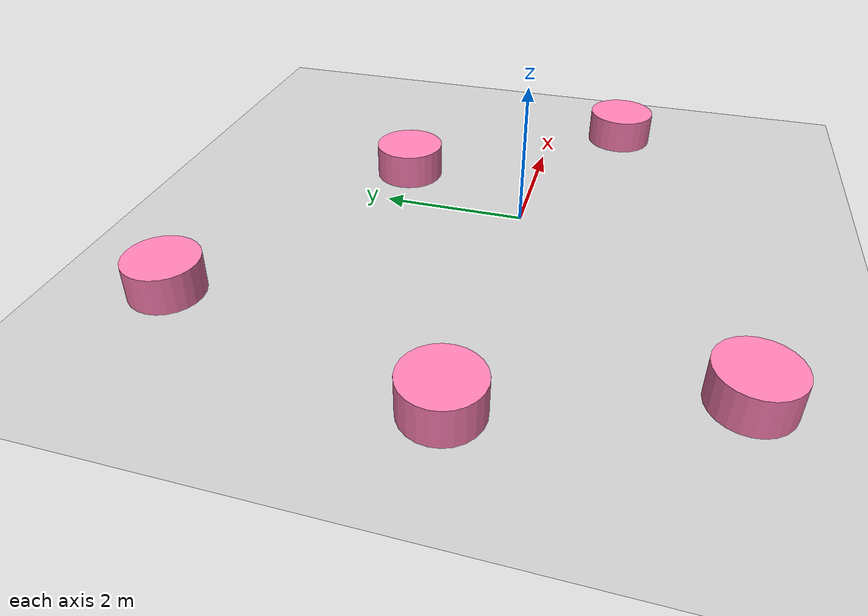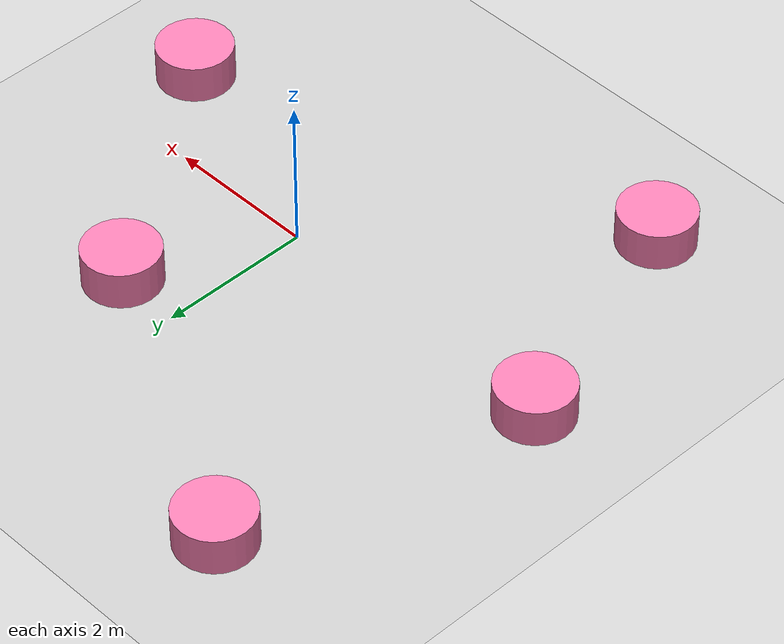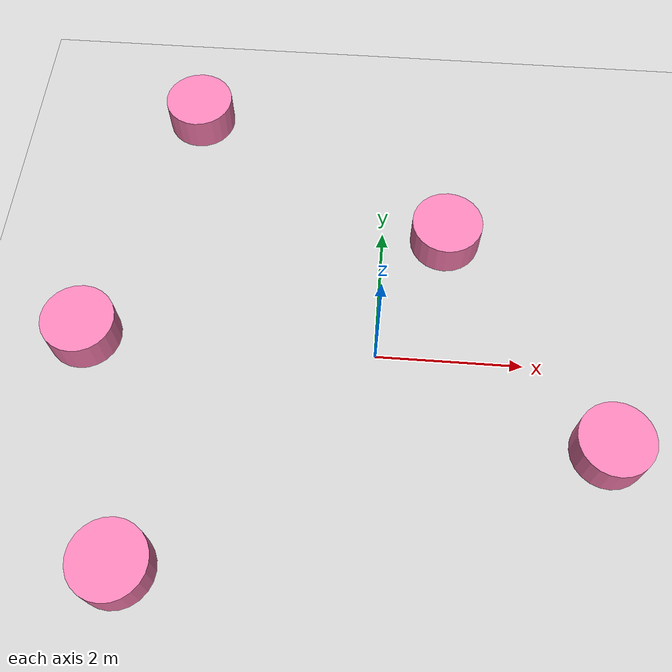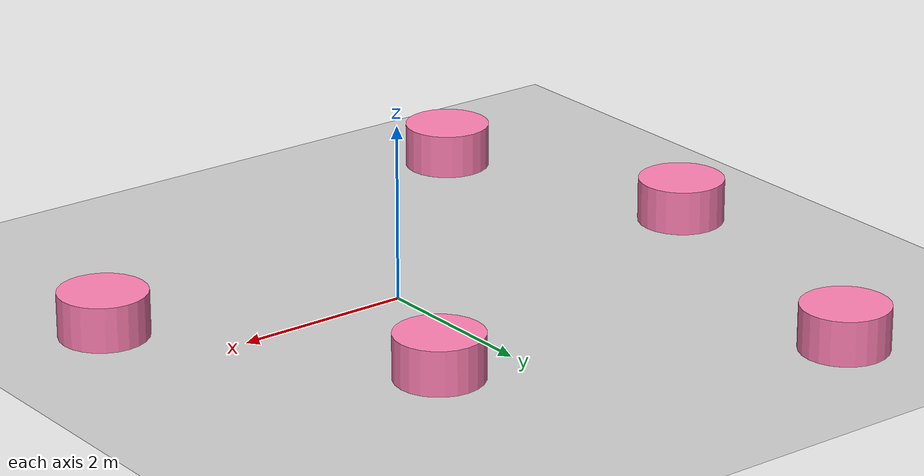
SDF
<sdf version="1.6">
 <world name="empty_world">
  <light name="sun" type="directional">
   <pose>0 0 10 0 -0 0</pose>
   <diffuse>0.8 0.8 0.8 1</diffuse>
   <specular>0.2 0.2 0.2 1</specular>
   <attenuation>
    <range>1000</range>
    <constant>0.9</constant>
    <linear>0.01</linear>
    <quadratic>0.001</quadratic>
   </attenuation>
   <direction>-0.5 0.1 -0.9</direction>
  </light>
  <model name="ground_plane">
   <static>1</static>
   <link name="link">
    <collision name="collision">
     <geometry><plane><normal>0 0 1</normal><size>100 100</size></plane></geometry>
     <surface><friction><ode><mu>100</mu><mu2>50</mu2></ode></friction></surface>
    </collision>
    <visual name="visual">
     <cast_shadows>0</cast_shadows>
     <geometry><plane><normal>0 0 1</normal><size>100 100</size></plane></geometry>
     <material>
      <script><uri>file://media/materials/scripts/gazebo.material</uri><name>Gazebo/Grey</name></script>
     </material>
    </visual>
   </link>
  </model>
  <gravity>0 0 -9.8</gravity>
  <magnetic_field>6e-06 2.3e-05 -4.2e-05</magnetic_field>
  <atmosphere type="adiabatic"/>
  <physics name="default_physics" default="0" type="ode">
   <max_step_size>0.001</max_step_size>
   <real_time_factor>1</real_time_factor>
   <real_time_update_rate>1000</real_time_update_rate>
  </physics>
  <scene>
   <ambient>0.4 0.4 0.4 1</ambient>
   <background>0.7 0.7 0.7 1</background>
   <shadows>1</shadows>
   <sky><sunrise>5</sunrise></sky>
  </scene>
  <spherical_coordinates>
   <surface_model>EARTH_WGS84</surface_model>
   <latitude_deg>0</latitude_deg>
   <longitude_deg>0</longitude_deg>
   <elevation>0</elevation>
   <heading_deg>0</heading_deg>
  </spherical_coordinates>
  <audio><device>default</device></audio>
  <model name="unit_cylinder_0">
   <link name="link">
    <inertial>
     <mass>3926.99</mass>
     <inertia><ixx>572.686</ixx><ixy>0</ixy><ixz>0</ixz><iyy>572.686</iyy><iyz>0</iyz><izz>490.874</izz></inertia>
    </inertial>
    <visual name="visual">
     <geometry><cylinder><radius>0.5</radius><length>1</length></cylinder></geometry>
     <material>
      <script><name>Gazebo/Grey</name><uri>file://media/materials/scripts/gazebo.material</uri></script>
      <shader type="vertex"><normal_map>__default__</normal_map></shader>
      <ambient>1 0.5 0.7 1</ambient>
      <diffuse>0 0 0 1</diffuse>
      <specular>0 0 0 1</specular>
      <emissive>0 0 0 1</emissive>
     </material>
    </visual>
    <collision name="collision">
     <geometry><cylinder><radius>0.5</radius><length>1</length></cylinder></geometry>
     <surface>
      <friction>
       <ode><mu>1</mu><mu2>1</mu2><fdir1>0 0 0</fdir1><slip1>0</slip1><slip2>0</slip2></ode>
       <torsional>
        <coefficient>1</coefficient>
        <patch_radius>0</patch_radius>
        <surface_radius>0</surface_radius>
        <use_patch_radius>1</use_patch_radius>
        <ode><slip>0</slip></ode>
       </torsional>
      </friction>
      <bounce><restitution_coefficient>0</restitution_coefficient><threshold>1e+06</threshold></bounce>
      <contact>
       <collide_without_contact>0</collide_without_contact>
       <collide_without_contact_bitmask>1</collide_without_contact_bitmask>
       <collide_bitmask>1</collide_bitmask>
       <ode>
        <soft_cfm>0</soft_cfm>
        <soft_erp>0.2</soft_erp>
        <kp>1e+13</kp>
        <kd>1</kd>
        <max_vel>0.01</max_vel>
        <min_depth>0</min_depth>
       </ode>
       <bullet>
        <split_impulse>1</split_impulse>
        <split_impulse_penetration_threshold>-0.01</split_impulse_penetration_threshold>
        <soft_cfm>0</soft_cfm>
        <soft_erp>0.2</soft_erp>
        <kp>1e+13</kp>
        <kd>1</kd>
       </bullet>
      </contact>
     </surface>
    </collision>
   </link>
   <static>0</static>
   <pose>3.06585 -1.13127 0 0 -0 0</pose>
  </model>
  <model name="unit_cylinder_1">
   <link name="link">
    <inertial>
     <mass>3926.99</mass>
     <inertia><ixx>572.686</ixx><ixy>0</ixy><ixz>0</ixz><iyy>572.686</iyy><iyz>0</iyz><izz>490.874</izz></inertia>
    </inertial>
    <visual name="visual">
     <geometry><cylinder><radius>0.5</radius><length>1</length></cylinder></geometry>
     <material>
      <script><name>Gazebo/Grey</name><uri>file://media/materials/scripts/gazebo.material</uri></script>
      <shader type="vertex"><normal_map>__default__</normal_map></shader>
      <ambient>1 0.5 0.7 1</ambient>
      <diffuse>0 0 0 1</diffuse>
      <specular>0 0 0 1</specular>
      <emissive>0 0 0 1</emissive>
     </material>
    </visual>
    <collision name="collision">
     <geometry><cylinder><radius>0.5</radius><length>1</length></cylinder></geometry>
     <surface>
      <friction>
       <ode><mu>1</mu><mu2>1</mu2><fdir1>0 0 0</fdir1><slip1>0</slip1><slip2>0</slip2></ode>
       <torsional>
        <coefficient>1</coefficient>
        <patch_radius>0</patch_radius>
        <surface_radius>0</surface_radius>
        <use_patch_radius>1</use_patch_radius>
        <ode><slip>0</slip></ode>
       </torsional>
      </friction>
      <bounce><restitution_coefficient>0</restitution_coefficient><threshold>1e+06</threshold></bounce>
      <contact>
       <collide_without_contact>0</collide_without_contact>
       <collide_without_contact_bitmask>1</collide_without_contact_bitmask>
       <collide_bitmask>1</collide_bitmask>
       <ode>
        <soft_cfm>0</soft_cfm>
        <soft_erp>0.2</soft_erp>
        <kp>1e+13</kp>
        <kd>1</kd>
        <max_vel>0.01</max_vel>
        <min_depth>0</min_depth>
       </ode>
       <bullet>
        <split_impulse>1</split_impulse>
        <split_impulse_penetration_threshold>-0.01</split_impulse_penetration_threshold>
        <soft_cfm>0</soft_cfm>
        <soft_erp>0.2</soft_erp>
        <kp>1e+13</kp>
        <kd>1</kd>
       </bullet>
      </contact>
     </surface>
    </collision>
   </link>
   <static>0</static>
   <pose>-2.94519 3.95489 0 0 -0 0</pose>
  </model>
  <model name="unit_cylinder">
   <link name="link">
    <inertial>
     <mass>3926.99</mass>
     <inertia><ixx>572.686</ixx><ixy>0</ixy><ixz>0</ixz><iyy>572.686</iyy><iyz>0</iyz><izz>490.874</izz></inertia>
    </inertial>
    <visual name="visual">
     <geometry><cylinder><radius>0.5</radius><length>1</length></cylinder></geometry>
     <material>
      <script><name>Gazebo/Grey</name><uri>file://media/materials/scripts/gazebo.material</uri></script>
      <shader type="vertex"><normal_map>__default__</normal_map></shader>
      <ambient>1 0.5 0.7 1</ambient>
      <diffuse>0 0 0 1</diffuse>
      <specular>0 0 0 1</specular>
      <emissive>0 0 0 1</emissive>
     </material>
    </visual>
    <collision name="collision">
     <geometry><cylinder><radius>0.5</radius><length>1</length></cylinder></geometry>
     <surface>
      <friction>
       <ode><mu>1</mu><mu2>1</mu2><fdir1>0 0 0</fdir1><slip1>0</slip1><slip2>0</slip2></ode>
       <torsional>
        <coefficient>1</coefficient>
        <patch_radius>0</patch_radius>
        <surface_radius>0</surface_radius>
        <use_patch_radius>1</use_patch_radius>
        <ode><slip>0</slip></ode>
       </torsional>
      </friction>
      <bounce><restitution_coefficient>0</restitution_coefficient><threshold>1e+06</threshold></bounce>
      <contact>
       <collide_without_contact>0</collide_without_contact>
       <collide_without_contact_bitmask>1</collide_without_contact_bitmask>
       <collide_bitmask>1</collide_bitmask>
       <ode>
        <soft_cfm>0</soft_cfm>
        <soft_erp>0.2</soft_erp>
        <kp>1e+13</kp>
        <kd>1</kd>
        <max_vel>0.01</max_vel>
        <min_depth>0</min_depth>
       </ode>
       <bullet>
        <split_impulse>1</split_impulse>
        <split_impulse_penetration_threshold>-0.01</split_impulse_penetration_threshold>
        <soft_cfm>0</soft_cfm>
        <soft_erp>0.2</soft_erp>
        <kp>1e+13</kp>
        <kd>1</kd>
       </bullet>
      </contact>
     </surface>
    </collision>
   </link>
   <static>0</static>
   <pose>-2.99239 -3.04921 0 0 -0 0</pose>
  </model>
  <model name="unit_cylinder_2">
   <link name="link">
    <inertial>
     <mass>3926.99</mass>
     <inertia><ixx>572.686</ixx><ixy>0</ixy><ixz>0</ixz><iyy>572.686</iyy><iyz>0</iyz><izz>490.874</izz></inertia>
    </inertial>
    <visual name="visual">
     <geometry><cylinder><radius>0.5</radius><length>1</length></cylinder></geometry>
     <material>
      <script><name>Gazebo/Grey</name><uri>file://media/materials/scripts/gazebo.material</uri></script>
      <shader type="vertex"><normal_map>__default__</normal_map></shader>
      <ambient>1 0.5 0.7 1</ambient>
      <diffuse>0 0 0 1</diffuse>
      <specular>0 0 0 1</specular>
      <emissive>0 0 0 1</emissive>
     </material>
    </visual>
    <collision name="collision">
     <geometry><cylinder><radius>0.5</radius><length>1</length></cylinder></geometry>
     <surface>
      <friction>
       <ode><mu>1</mu><mu2>1</mu2><fdir1>0 0 0</fdir1><slip1>0</slip1><slip2>0</slip2></ode>
       <torsional>
        <coefficient>1</coefficient>
        <patch_radius>0</patch_radius>
        <surface_radius>0</surface_radius>
        <use_patch_radius>1</use_patch_radius>
        <ode><slip>0</slip></ode>
       </torsional>
      </friction>
      <bounce><restitution_coefficient>0</restitution_coefficient><threshold>1e+06</threshold></bounce>
      <contact>
       <collide_without_contact>0</collide_without_contact>
       <collide_without_contact_bitmask>1</collide_without_contact_bitmask>
       <collide_bitmask>1</collide_bitmask>
       <ode>
        <soft_cfm>0</soft_cfm>
        <soft_erp>0.2</soft_erp>
        <kp>1e+13</kp>
        <kd>1</kd>
        <max_vel>0.01</max_vel>
        <min_depth>0</min_depth>
       </ode>
       <bullet>
        <split_impulse>1</split_impulse>
        <split_impulse_penetration_threshold>-0.01</split_impulse_penetration_threshold>
        <soft_cfm>0</soft_cfm>
        <soft_erp>0.2</soft_erp>
        <kp>1e+13</kp>
        <kd>1</kd>
       </bullet>
      </contact>
     </surface>
    </collision>
   </link>
   <static>0</static>
   <pose>0.90908 1.95073 0 0 -0 0</pose>
  </model>
  <model name="unit_cylinder_3">
   <link name="link">
    <inertial>
     <mass>3926.99</mass>
     <inertia><ixx>572.686</ixx><ixy>0</ixy><ixz>0</ixz><iyy>572.686</iyy><iyz>0</iyz><izz>490.874</izz></inertia>
    </inertial>
    <visual name="visual">
     <geometry><cylinder><radius>0.5</radius><length>1</length></cylinder></geometry>
     <material>
      <script><name>Gazebo/Grey</name><uri>file://media/materials/scripts/gazebo.material</uri></script>
      <shader type="vertex"><normal_map>__default__</normal_map></shader>
      <ambient>1 0.5 0.7 1</ambient>
      <diffuse>0 0 0 1</diffuse>
      <specular>0 0 0 1</specular>
      <emissive>0 0 0 1</emissive>
     </material>
    </visual>
    <collision name="collision">
     <geometry><cylinder><radius>0.5</radius><length>1</length></cylinder></geometry>
     <surface>
      <friction>
       <ode><mu>1</mu><mu2>1</mu2><fdir1>0 0 0</fdir1><slip1>0</slip1><slip2>0</slip2></ode>
       <torsional>
        <coefficient>1</coefficient>
        <patch_radius>0</patch_radius>
        <surface_radius>0</surface_radius>
        <use_patch_radius>1</use_patch_radius>
        <ode><slip>0</slip></ode>
       </torsional>
      </friction>
      <bounce><restitution_coefficient>0</restitution_coefficient><threshold>1e+06</threshold></bounce>
      <contact>
       <collide_without_contact>0</collide_without_contact>
       <collide_without_contact_bitmask>1</collide_without_contact_bitmask>
       <collide_bitmask>1</collide_bitmask>
       <ode>
        <soft_cfm>0</soft_cfm>
        <soft_erp>0.2</soft_erp>
        <kp>1e+13</kp>
        <kd>1</kd>
        <max_vel>0.01</max_vel>
        <min_depth>0</min_depth>
       </ode>
       <bullet>
        <split_impulse>1</split_impulse>
        <split_impulse_penetration_threshold>-0.01</split_impulse_penetration_threshold>
        <soft_cfm>0</soft_cfm>
        <soft_erp>0.2</soft_erp>
        <kp>1e+13</kp>
        <kd>1</kd>
       </bullet>
      </contact>
     </surface>
    </collision>
   </link>
   <static>0</static>
   <pose>-4.0151 0.056818 0 0 -0 0</pose>
  </model>
 </world>
</sdf>
